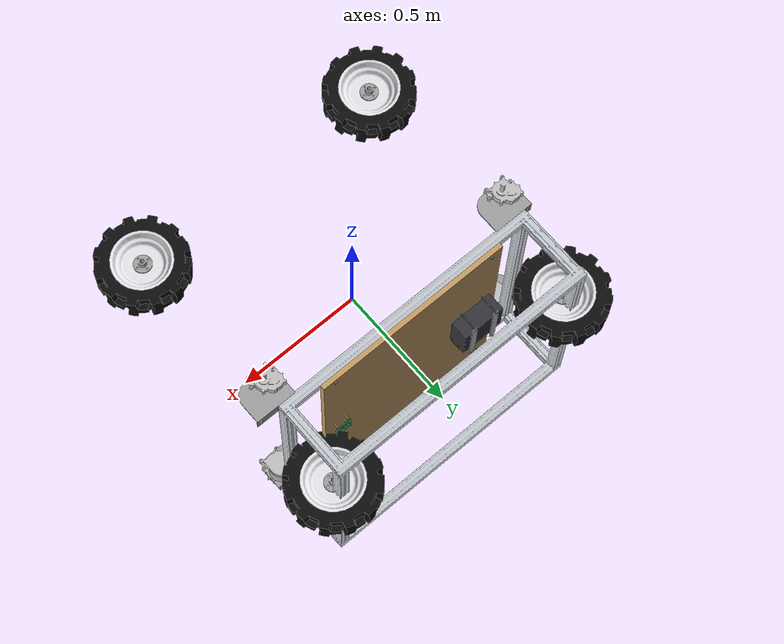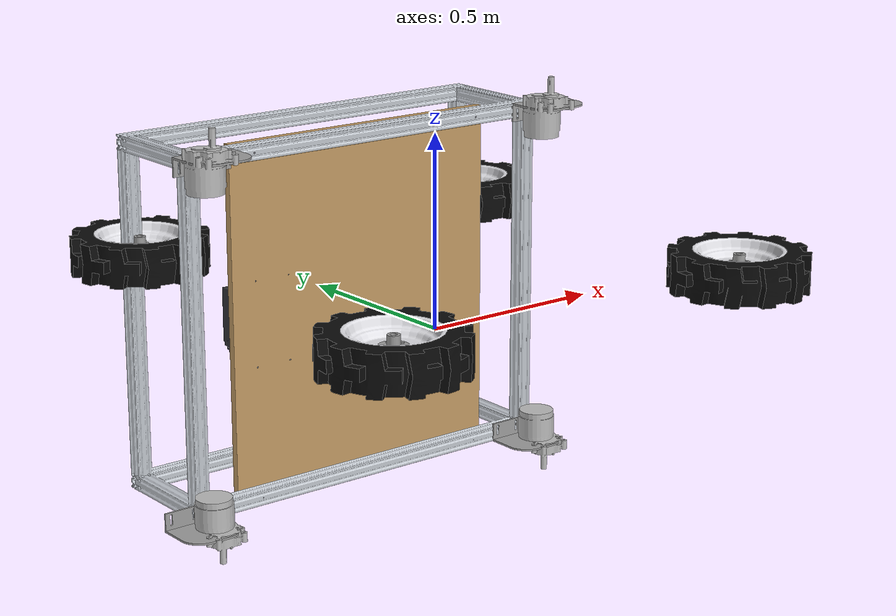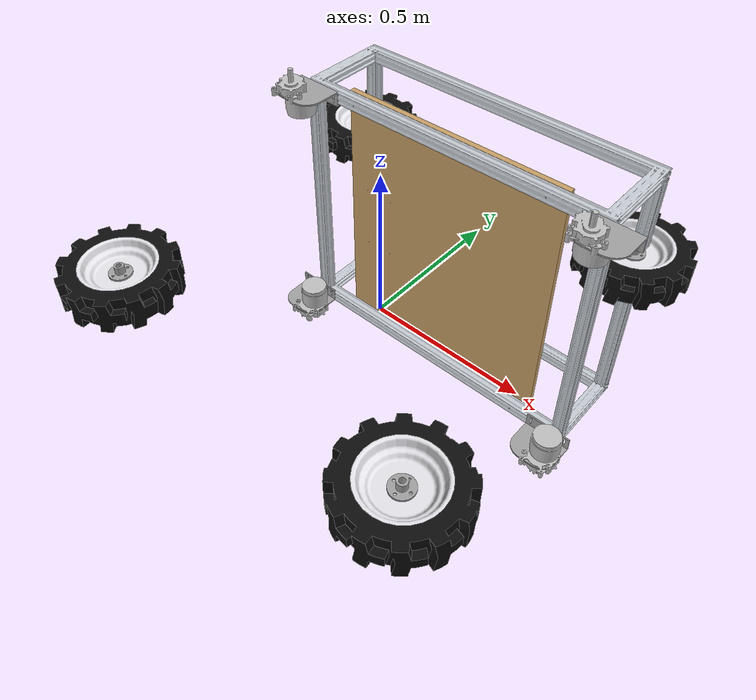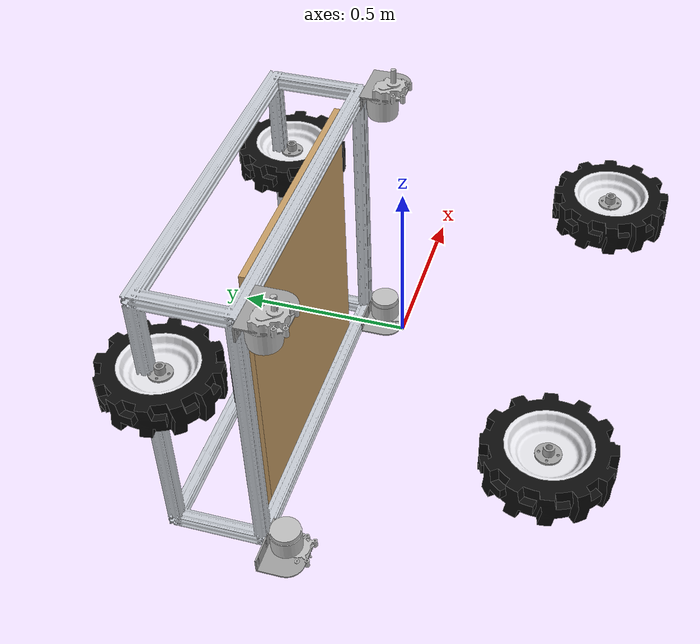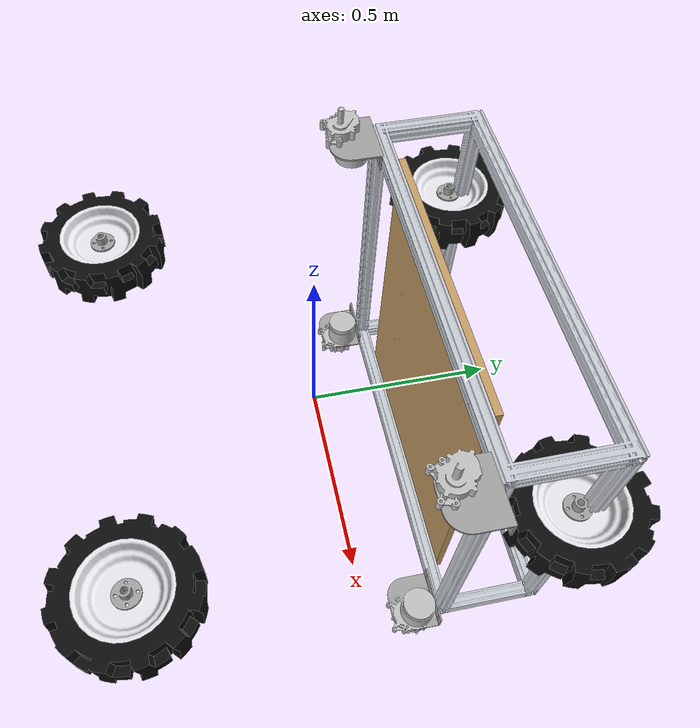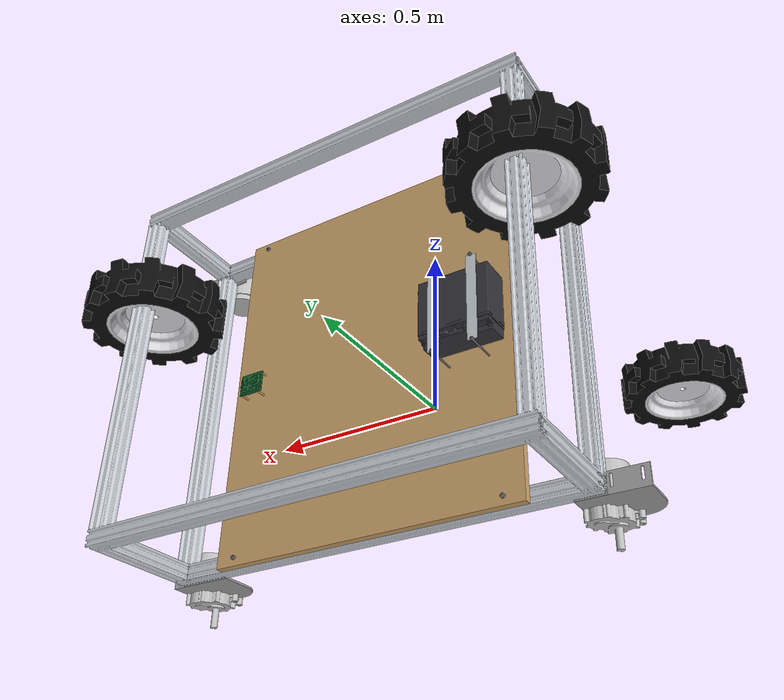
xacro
<?xml version="1.0"?>
<robot name="robot" xmlns:xacro="http://www.ros.org/wiki/xacro">

  <material name="aluminum"><color rgba="0.78 0.80 0.83 1.0"/></material>
  <material name="plywood"><color rgba="0.78 0.62 0.40 1.0"/></material>
  <material name="steel"><color rgba="0.45 0.45 0.48 1.0"/></material>
  <material name="brass"><color rgba="0.85 0.65 0.30 1.0"/></material>
  <material name="pcb"><color rgba="0.10 0.40 0.20 1.0"/></material>
  <material name="plastic"><color rgba="0.20 0.20 0.22 1.0"/></material>
  <material name="motor"><color rgba="0.75 0.75 0.75 1.0"/></material>
  <material name="bracket"><color rgba="0.63 0.63 0.63 1.0"/></material>
  <material name="tire"><color rgba="0.05 0.05 0.05 1.0"/></material>
  <material name="rim"><color rgba="0.90 0.90 0.92 1.0"/></material>
  <material name="hub"><color rgba="0.63 0.63 0.63 1.0"/></material>

  <link name="base_link"/>

  <link name="chassis">
    <visual><geometry><mesh filename="package://robot/meshes/chassis_aluminum.stl" scale="0.001 0.001 0.001"/></geometry><material name="aluminum"/></visual>
    <visual><geometry><mesh filename="package://robot/meshes/chassis_plywood.stl" scale="0.001 0.001 0.001"/></geometry><material name="plywood"/></visual>
    <visual><geometry><mesh filename="package://robot/meshes/chassis_steel.stl" scale="0.001 0.001 0.001"/></geometry><material name="steel"/></visual>
    <visual><geometry><mesh filename="package://robot/meshes/chassis_brass.stl" scale="0.001 0.001 0.001"/></geometry><material name="brass"/></visual>
    <visual><geometry><mesh filename="package://robot/meshes/chassis_pcb.stl" scale="0.001 0.001 0.001"/></geometry><material name="pcb"/></visual>
    <visual><geometry><mesh filename="package://robot/meshes/chassis_plastic.stl" scale="0.001 0.001 0.001"/></geometry><material name="plastic"/></visual>
    <visual><geometry><mesh filename="package://robot/meshes/chassis_motor.stl" scale="0.001 0.001 0.001"/></geometry><material name="motor"/></visual>
    <visual><geometry><mesh filename="package://robot/meshes/chassis_bracket.stl" scale="0.001 0.001 0.001"/></geometry><material name="bracket"/></visual>
  </link>
  <joint name="base_to_chassis" type="fixed">
    <parent link="base_link"/>
    <child link="chassis"/>
    <origin rpy="0 0 0"/>
  </joint>

  <link name="wheel_fl">
    <visual><geometry><mesh filename="package://robot/meshes/wheel_tire.stl" scale="0.001 0.001 0.001"/></geometry><material name="tire"/></visual>
    <visual><geometry><mesh filename="package://robot/meshes/wheel_rim.stl" scale="0.001 0.001 0.001"/></geometry><material name="rim"/></visual>
    <visual><geometry><mesh filename="package://robot/meshes/wheel_hub.stl" scale="0.001 0.001 0.001"/></geometry><material name="hub"/></visual>
  </link>
  <joint name="wheel_fl_joint" type="continuous">
    <parent link="chassis"/>
    <child link="wheel_fl"/>
    <origin xyz="0.53 0.527 0.178"/>
    <axis xyz="0 1 0"/>
  </joint>

  <link name="wheel_fr">
    <visual><geometry><mesh filename="package://robot/meshes/wheel_tire.stl" scale="0.001 0.001 0.001"/></geometry><material name="tire"/></visual>
    <visual><geometry><mesh filename="package://robot/meshes/wheel_rim.stl" scale="0.001 0.001 0.001"/></geometry><material name="rim"/></visual>
    <visual><geometry><mesh filename="package://robot/meshes/wheel_hub.stl" scale="0.001 0.001 0.001"/></geometry><material name="hub"/></visual>
  </link>
  <joint name="wheel_fr_joint" type="continuous">
    <parent link="chassis"/>
    <child link="wheel_fr"/>
    <origin xyz="0.53 -0.527 0.178"/>
    <axis xyz="0 1 0"/>
  </joint>

  <link name="wheel_rl">
    <visual><geometry><mesh filename="package://robot/meshes/wheel_tire.stl" scale="0.001 0.001 0.001"/></geometry><material name="tire"/></visual>
    <visual><geometry><mesh filename="package://robot/meshes/wheel_rim.stl" scale="0.001 0.001 0.001"/></geometry><material name="rim"/></visual>
    <visual><geometry><mesh filename="package://robot/meshes/wheel_hub.stl" scale="0.001 0.001 0.001"/></geometry><material name="hub"/></visual>
  </link>
  <joint name="wheel_rl_joint" type="continuous">
    <parent link="chassis"/>
    <child link="wheel_rl"/>
    <origin xyz="-0.53 0.527 0.178"/>
    <axis xyz="0 1 0"/>
  </joint>

  <link name="wheel_rr">
    <visual><geometry><mesh filename="package://robot/meshes/wheel_tire.stl" scale="0.001 0.001 0.001"/></geometry><material name="tire"/></visual>
    <visual><geometry><mesh filename="package://robot/meshes/wheel_rim.stl" scale="0.001 0.001 0.001"/></geometry><material name="rim"/></visual>
    <visual><geometry><mesh filename="package://robot/meshes/wheel_hub.stl" scale="0.001 0.001 0.001"/></geometry><material name="hub"/></visual>
  </link>
  <joint name="wheel_rr_joint" type="continuous">
    <parent link="chassis"/>
    <child link="wheel_rr"/>
    <origin xyz="-0.53 -0.527 0.178"/>
    <axis xyz="0 1 0"/>
  </joint>

  <link name="camera_link"/>
  <joint name="base_to_camera" type="fixed">
    <parent link="base_link"/>
    <child link="camera_link"/>
    <origin xyz="0.15 0 0.2"/>
  </joint>

  <link name="camera_optical_frame"/>
  <joint name="camera_to_optical" type="fixed">
    <parent link="camera_link"/>
    <child link="camera_optical_frame"/>
    <origin rpy="-1.5707963 0 -1.5707963"/>
  </joint>

  <xacro:macro name="wheel_ros2_control_joint" params="name">
    <joint name="${name}">
      <command_interface name="velocity"/>
      <state_interface name="position"/>
      <state_interface name="velocity"/>
    </joint>
  </xacro:macro>

  <ros2_control name="RobotSystem" type="system">
    <hardware>
      <plugin>mock_components/GenericSystem</plugin>
      <param name="calculate_dynamics">true</param>
    </hardware>
    <xacro:wheel_ros2_control_joint name="wheel_fl_joint"/>
    <xacro:wheel_ros2_control_joint name="wheel_fr_joint"/>
    <xacro:wheel_ros2_control_joint name="wheel_rl_joint"/>
    <xacro:wheel_ros2_control_joint name="wheel_rr_joint"/>
  </ros2_control>

</robot>
